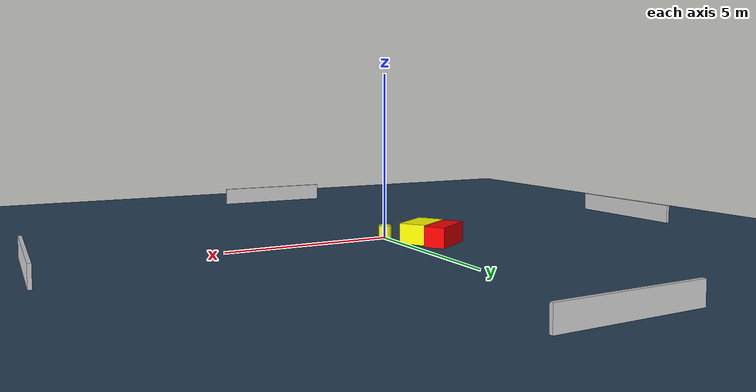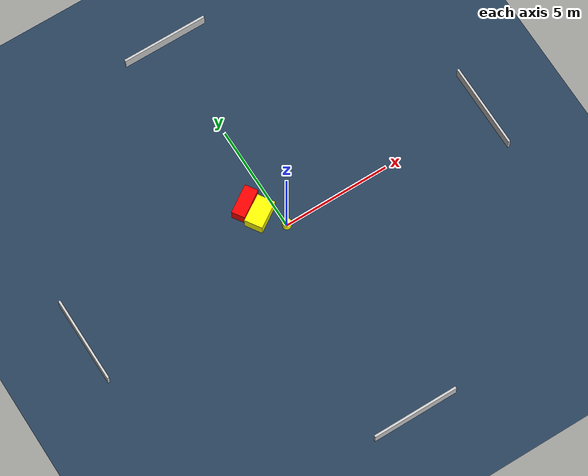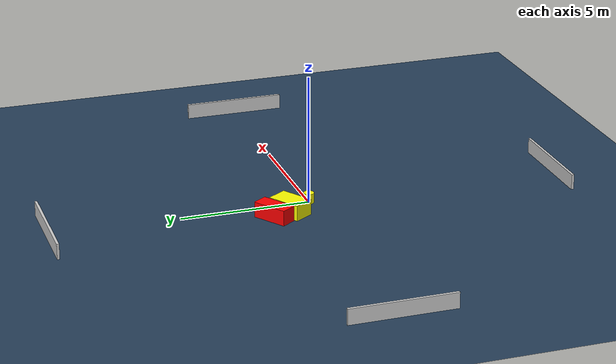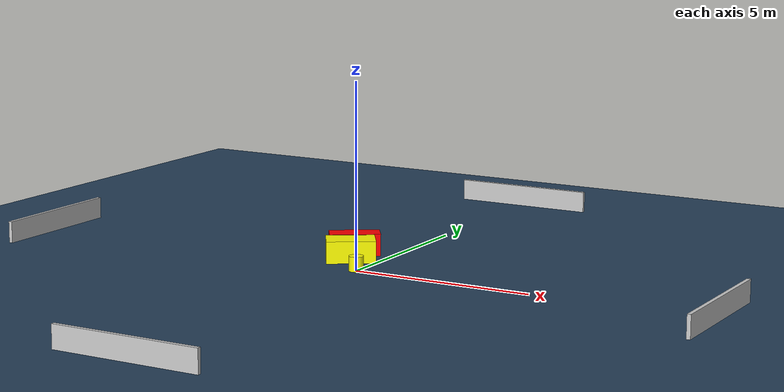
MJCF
<?xml version="1.0" ?>
<mujoco model="generated_environment">
  <option timestep="0.01" integrator="RK4" cone="elliptic"/>
  <default>
    <geom density="1"/>
  </default>
  <asset>
    <texture builtin="gradient" height="3072" name="skybox" rgb1="0.3 0.5 0.7" rgb2="0 0 0" type="skybox" width="512"/>
    <texture builtin="checker" height="300" name="groundplane" rgb1="0.2 0.3 0.4" rgb2="0.1 0.2 0.3" type="2d" width="300"/>
    <material name="groundplane" reflectance="0.2" texrepeat="5 5" texture="groundplane"/>
  </asset>
  <worldbody>
    <light dir="0 0 -1" directional="true" pos="0 0 1.5"/>
    <geom condim="3" friction="0.5 0.005 0.001" material="groundplane" name="floor" pos="0 0 0" size="0 0 0.05" type="plane"/>
    <body name="walls">
      <geom name="wall_1" condim="4" pos="-10.0 0.0 0.3" rgba="0.800000011920929 0.800000011920929 0.800000011920929 1.0" size="0.05 2.0 0.3" type="box"/>
      <geom name="wall_2" condim="4" pos="10.0 0.0 0.3" rgba="0.800000011920929 0.800000011920929 0.800000011920929 1.0" size="0.05 2.0 0.3" type="box"/>
      <geom name="wall_3" condim="4" pos="0.0 -10.0 0.3" rgba="0.800000011920929 0.800000011920929 0.800000011920929 1.0" size="2.0 0.05 0.3" type="box"/>
      <geom name="wall_4" condim="4" pos="0.0 10.0 0.3" rgba="0.800000011920929 0.800000011920929 0.800000011920929 1.0" size="2.0 0.05 0.3" type="box"/>
    </body>
    <body name="robot">
      <joint name="joint_x" type="slide" pos="0 0 0" axis="1 0 0"/>
      <joint name="joint_y" type="slide" pos="0 0 0" axis="0 1 0"/>
      <geom name="robot" type="cylinder" pos="0.0 0.0 0.2" size="0.2 0.2 0.0" mass="5.0" friction="1.0 0.005 0.0001" condim="4" rgba="1.0 1.0 0.0 1.0"/>
    </body>
    <body name="obstacle_1_movable">
      <geom name="obstacle_1_movable" condim="4" pos="-0.7443898510241618 0.9655014608139871 0.3" euler="0 0 213.03440160974526" friction="0.0 0.005 0.001" rgba="1.0 1.0 0.0 1.0" size="0.6638754517473843 0.4162838243369144 0.3" type="box" mass="0.1"/>
      <joint type="free"/>
    </body>
    <body name="obstacle_2_static">
      <geom name="obstacle_2_static" condim="4" pos="-1.0485741380353568 1.6899667223981838 0.3" euler="0 0 213.85416018797036" friction="0.0 0.005 0.001" rgba="1.0 0.0 0.0 1.0" size="0.6929991987088764 0.309412596805658 0.3" type="box"/>
    </body>
  </worldbody>
  <actuator>
    <motor name="actuator_x" joint="joint_x" gear="1" ctrlrange="-1 1"/>
    <motor name="actuator_y" joint="joint_y" gear="1" ctrlrange="-1 1"/>
  </actuator>
</mujoco>
